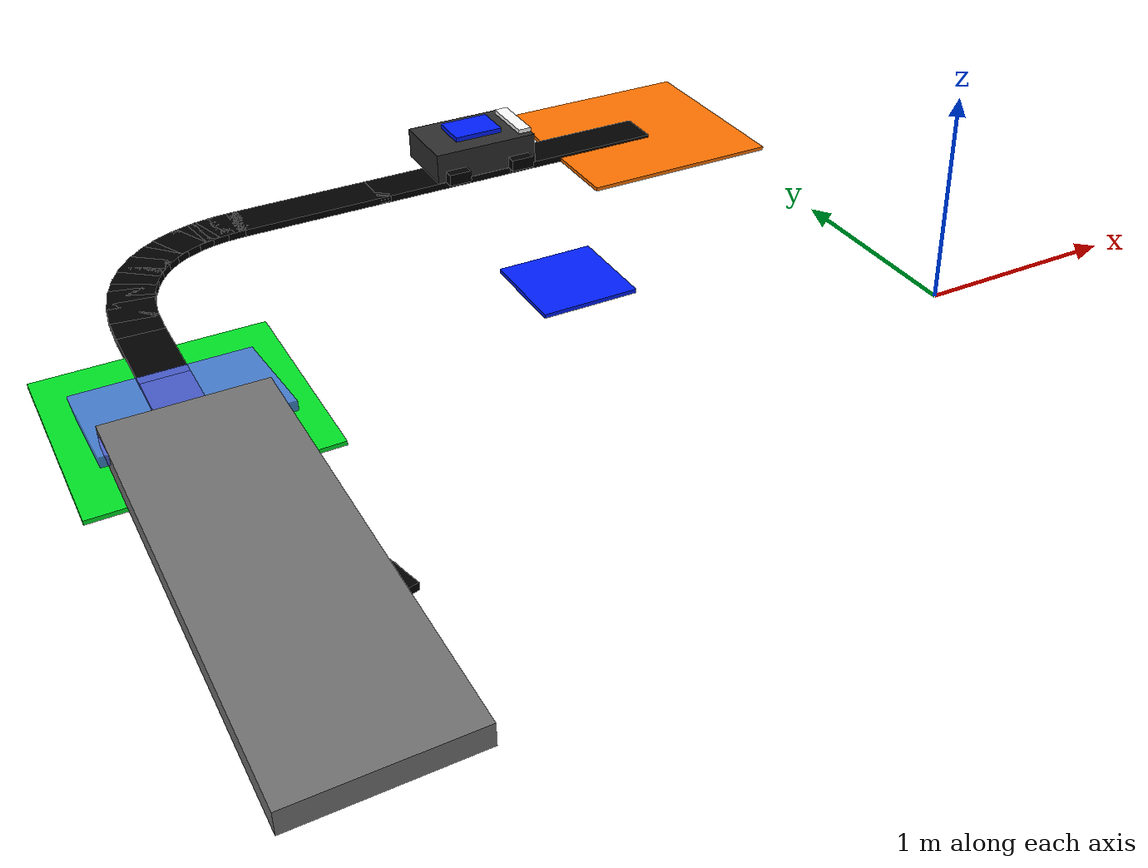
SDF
<sdf version="1.6">
 <world name="agv_factory_final_box_agv">
  <include><uri>model://sun</uri></include>
  <model name="main_loop_23">
   <static>true</static>
   <pose>-3.3500 -0.2000 0.0175 0 0 1.5708</pose>
   <link name="link">
    <collision name="collision"><geometry><box><size>0.5600 0.2200 0.0350</size></box></geometry></collision>
    <visual name="visual">
     <geometry><box><size>0.5600 0.2200 0.0350</size></box></geometry>
     <material><ambient>0 0 0 1</ambient><diffuse>0 0 0 1</diffuse></material>
    </visual>
   </link>
  </model>
  <model name="main_loop_24">
   <static>true</static>
   <pose>-3.3500 0.3000 0.0175 0 0 1.5708</pose>
   <link name="link">
    <collision name="collision"><geometry><box><size>0.5600 0.2200 0.0350</size></box></geometry></collision>
    <visual name="visual">
     <geometry><box><size>0.5600 0.2200 0.0350</size></box></geometry>
     <material><ambient>0 0 0 1</ambient><diffuse>0 0 0 1</diffuse></material>
    </visual>
   </link>
  </model>
  <model name="main_loop_25">
   <static>true</static>
   <pose>-3.3500 0.8000 0.0175 0 0 1.5708</pose>
   <link name="link">
    <collision name="collision"><geometry><box><size>0.5600 0.2200 0.0350</size></box></geometry></collision>
    <visual name="visual">
     <geometry><box><size>0.5600 0.2200 0.0350</size></box></geometry>
     <material><ambient>0 0 0 1</ambient><diffuse>0 0 0 1</diffuse></material>
    </visual>
   </link>
  </model>
  <model name="main_loop_26">
   <static>true</static>
   <pose>-3.3500 1.2500 0.0175 0 0 1.5708</pose>
   <link name="link">
    <collision name="collision"><geometry><box><size>0.4600 0.2200 0.0350</size></box></geometry></collision>
    <visual name="visual">
     <geometry><box><size>0.4600 0.2200 0.0350</size></box></geometry>
     <material><ambient>0 0 0 1</ambient><diffuse>0 0 0 1</diffuse></material>
    </visual>
   </link>
  </model>
  <model name="main_loop_27">
   <static>true</static>
   <pose>-3.3469 1.5156 0.0175 0 0 1.5241</pose>
   <link name="link">
    <collision name="collision"><geometry><box><size>0.1914 0.2200 0.0350</size></box></geometry></collision>
    <visual name="visual">
     <geometry><box><size>0.1914 0.2200 0.0350</size></box></geometry>
     <material><ambient>0 0 0 1</ambient><diffuse>0 0 0 1</diffuse></material>
    </visual>
   </link>
  </model>
  <model name="main_loop_28">
   <static>true</static>
   <pose>-3.3349 1.6408 0.0175 0 0 1.4211</pose>
   <link name="link">
    <collision name="collision"><geometry><box><size>0.1803 0.2200 0.0350</size></box></geometry></collision>
    <visual name="visual">
     <geometry><box><size>0.1803 0.2200 0.0350</size></box></geometry>
     <material><ambient>0 0 0 1</ambient><diffuse>0 0 0 1</diffuse></material>
    </visual>
   </link>
  </model>
  <model name="main_loop_29">
   <static>true</static>
   <pose>-3.3114 1.7536 0.0175 0 0 1.3052</pose>
   <link name="link">
    <collision name="collision"><geometry><box><size>0.1707 0.2200 0.0350</size></box></geometry></collision>
    <visual name="visual">
     <geometry><box><size>0.1707 0.2200 0.0350</size></box></geometry>
     <material><ambient>0 0 0 1</ambient><diffuse>0 0 0 1</diffuse></material>
    </visual>
   </link>
  </model>
  <model name="main_loop_30">
   <static>true</static>
   <pose>-3.2771 1.8544 0.0175 0 0 1.1764</pose>
   <link name="link">
    <collision name="collision"><geometry><box><size>0.1627 0.2200 0.0350</size></box></geometry></collision>
    <visual name="visual">
     <geometry><box><size>0.1627 0.2200 0.0350</size></box></geometry>
     <material><ambient>0 0 0 1</ambient><diffuse>0 0 0 1</diffuse></material>
    </visual>
   </link>
  </model>
  <model name="main_loop_31">
   <static>true</static>
   <pose>-3.2328 1.9434 0.0175 0 0 1.0359</pose>
   <link name="link">
    <collision name="collision"><geometry><box><size>0.1565 0.2200 0.0350</size></box></geometry></collision>
    <visual name="visual">
     <geometry><box><size>0.1565 0.2200 0.0350</size></box></geometry>
     <material><ambient>0 0 0 1</ambient><diffuse>0 0 0 1</diffuse></material>
    </visual>
   </link>
  </model>
  <model name="main_loop_32">
   <static>true</static>
   <pose>-3.1791 2.0206 0.0175 0 0 0.8866</pose>
   <link name="link">
    <collision name="collision"><geometry><box><size>0.1521 0.2200 0.0350</size></box></geometry></collision>
    <visual name="visual">
     <geometry><box><size>0.1521 0.2200 0.0350</size></box></geometry>
     <material><ambient>0 0 0 1</ambient><diffuse>0 0 0 1</diffuse></material>
    </visual>
   </link>
  </model>
  <model name="main_loop_33">
   <static>true</static>
   <pose>-3.1167 2.0862 0.0175 0 0 0.7331</pose>
   <link name="link">
    <collision name="collision"><geometry><box><size>0.1496 0.2200 0.0350</size></box></geometry></collision>
    <visual name="visual">
     <geometry><box><size>0.1496 0.2200 0.0350</size></box></geometry>
     <material><ambient>0 0 0 1</ambient><diffuse>0 0 0 1</diffuse></material>
    </visual>
   </link>
  </model>
  <model name="main_loop_34">
   <static>true</static>
   <pose>-3.0464 2.1405 0.0175 0 0 0.5803</pose>
   <link name="link">
    <collision name="collision"><geometry><box><size>0.1487 0.2200 0.0350</size></box></geometry></collision>
    <visual name="visual">
     <geometry><box><size>0.1487 0.2200 0.0350</size></box></geometry>
     <material><ambient>0 0 0 1</ambient><diffuse>0 0 0 1</diffuse></material>
    </visual>
   </link>
  </model>
  <model name="main_loop_35">
   <static>true</static>
   <pose>-2.9687 2.1836 0.0175 0 0 0.4332</pose>
   <link name="link">
    <collision name="collision"><geometry><box><size>0.1494 0.2200 0.0350</size></box></geometry></collision>
    <visual name="visual">
     <geometry><box><size>0.1494 0.2200 0.0350</size></box></geometry>
     <material><ambient>0 0 0 1</ambient><diffuse>0 0 0 1</diffuse></material>
    </visual>
   </link>
  </model>
  <model name="main_loop_36">
   <static>true</static>
   <pose>-2.8844 2.2156 0.0175 0 0 0.2954</pose>
   <link name="link">
    <collision name="collision"><geometry><box><size>0.1513 0.2200 0.0350</size></box></geometry></collision>
    <visual name="visual">
     <geometry><box><size>0.1513 0.2200 0.0350</size></box></geometry>
     <material><ambient>0 0 0 1</ambient><diffuse>0 0 0 1</diffuse></material>
    </visual>
   </link>
  </model>
  <model name="main_loop_37">
   <static>true</static>
   <pose>-2.7943 2.2368 0.0175 0 0 0.1687</pose>
   <link name="link">
    <collision name="collision"><geometry><box><size>0.1543 0.2200 0.0350</size></box></geometry></collision>
    <visual name="visual">
     <geometry><box><size>0.1543 0.2200 0.0350</size></box></geometry>
     <material><ambient>0 0 0 1</ambient><diffuse>0 0 0 1</diffuse></material>
    </visual>
   </link>
  </model>
  <model name="main_loop_38">
   <static>true</static>
   <pose>-2.6989 2.2474 0.0175 0 0 0.0535</pose>
   <link name="link">
    <collision name="collision"><geometry><box><size>0.1579 0.2200 0.0350</size></box></geometry></collision>
    <visual name="visual">
     <geometry><box><size>0.1579 0.2200 0.0350</size></box></geometry>
     <material><ambient>0 0 0 1</ambient><diffuse>0 0 0 1</diffuse></material>
    </visual>
   </link>
  </model>
  <model name="main_loop_39">
   <static>true</static>
   <pose>-2.2750 2.2500 0.0175 0 0 0.0000</pose>
   <link name="link">
    <collision name="collision"><geometry><box><size>0.8100 0.2200 0.0350</size></box></geometry></collision>
    <visual name="visual">
     <geometry><box><size>0.8100 0.2200 0.0350</size></box></geometry>
     <material><ambient>0 0 0 1</ambient><diffuse>0 0 0 1</diffuse></material>
    </visual>
   </link>
  </model>
  <model name="main_loop_40">
   <static>true</static>
   <pose>-1.5250 2.2500 0.0175 0 0 0.0000</pose>
   <link name="link">
    <collision name="collision"><geometry><box><size>0.8100 0.2200 0.0350</size></box></geometry></collision>
    <visual name="visual">
     <geometry><box><size>0.8100 0.2200 0.0350</size></box></geometry>
     <material><ambient>0 0 0 1</ambient><diffuse>0 0 0 1</diffuse></material>
    </visual>
   </link>
  </model>
  <model name="main_loop_41">
   <static>true</static>
   <pose>-0.7500 2.2500 0.0175 0 0 0.0000</pose>
   <link name="link">
    <collision name="collision"><geometry><box><size>0.8600 0.2200 0.0350</size></box></geometry></collision>
    <visual name="visual">
     <geometry><box><size>0.8600 0.2200 0.0350</size></box></geometry>
     <material><ambient>0 0 0 1</ambient><diffuse>0 0 0 1</diffuse></material>
    </visual>
   </link>
  </model>
  <model name="left_inner_curve_01">
   <static>true</static>
   <pose>-3.2984 -0.3247 0.0175 0 0 -0.4464</pose>
   <link name="link">
    <collision name="collision"><geometry><box><size>0.1743 0.2200 0.0350</size></box></geometry></collision>
    <visual name="visual">
     <geometry><box><size>0.1743 0.2200 0.0350</size></box></geometry>
     <material><ambient>0 0 0 1</ambient><diffuse>0 0 0 1</diffuse></material>
    </visual>
   </link>
  </model>
  <model name="left_inner_curve_02">
   <static>true</static>
   <pose>-3.2047 -0.3846 0.0175 0 0 -0.6964</pose>
   <link name="link">
    <collision name="collision"><geometry><box><size>0.1700 0.2200 0.0350</size></box></geometry></collision>
    <visual name="visual">
     <geometry><box><size>0.1700 0.2200 0.0350</size></box></geometry>
     <material><ambient>0 0 0 1</ambient><diffuse>0 0 0 1</diffuse></material>
    </visual>
   </link>
  </model>
  <model name="left_inner_curve_03">
   <static>true</static>
   <pose>-3.1297 -0.4639 0.0175 0 0 -0.9295</pose>
   <link name="link">
    <collision name="collision"><geometry><box><size>0.1697 0.2200 0.0350</size></box></geometry></collision>
    <visual name="visual">
     <geometry><box><size>0.1697 0.2200 0.0350</size></box></geometry>
     <material><ambient>0 0 0 1</ambient><diffuse>0 0 0 1</diffuse></material>
    </visual>
   </link>
  </model>
  <model name="left_inner_curve_04">
   <static>true</static>
   <pose>-3.0734 -0.5585 0.0175 0 0 -1.1380</pose>
   <link name="link">
    <collision name="collision"><geometry><box><size>0.1718 0.2200 0.0350</size></box></geometry></collision>
    <visual name="visual">
     <geometry><box><size>0.1718 0.2200 0.0350</size></box></geometry>
     <material><ambient>0 0 0 1</ambient><diffuse>0 0 0 1</diffuse></material>
    </visual>
   </link>
  </model>
  <model name="left_inner_curve_05">
   <static>true</static>
   <pose>-3.0359 -0.6648 0.0175 0 0 -1.3230</pose>
   <link name="link">
    <collision name="collision"><geometry><box><size>0.1747 0.2200 0.0350</size></box></geometry></collision>
    <visual name="visual">
     <geometry><box><size>0.1747 0.2200 0.0350</size></box></geometry>
     <material><ambient>0 0 0 1</ambient><diffuse>0 0 0 1</diffuse></material>
    </visual>
   </link>
  </model>
  <model name="orange_agv02_start_area">
   <static>true</static>
   <pose>-0.3500 2.2500 0.0100 0 0 0.0000</pose>
   <link name="link">
    <collision name="collision"><geometry><box><size>1.0500 1.0500 0.0200</size></box></geometry></collision>
    <visual name="visual">
     <geometry><box><size>1.0500 1.0500 0.0200</size></box></geometry>
     <material><ambient>1.0 0.45 0.0 1.0</ambient><diffuse>1.0 0.45 0.0 1.0</diffuse></material>
    </visual>
   </link>
  </model>
  <model name="green_left_square">
   <static>true</static>
   <pose>-3.3500 0.7500 0.0100 0 0 0.0000</pose>
   <link name="link">
    <collision name="collision"><geometry><box><size>1.0500 1.0500 0.0200</size></box></geometry></collision>
    <visual name="visual">
     <geometry><box><size>1.0500 1.0500 0.0200</size></box></geometry>
     <material><ambient>0.0 0.9 0.15 1.0</ambient><diffuse>0.0 0.9 0.15 1.0</diffuse></material>
    </visual>
   </link>
  </model>
  <model name="conveyor_area">
   <static>true</static>
   <pose>-3.3500 -0.4500 0.0850 0 0 0.0000</pose>
   <link name="link">
    <collision name="collision"><geometry><box><size>0.7200 2.2000 0.1000</size></box></geometry></collision>
    <visual name="visual">
     <geometry><box><size>0.7200 2.2000 0.1000</size></box></geometry>
     <material><ambient>0.45 0.45 0.45 1.0</ambient><diffuse>0.45 0.45 0.45 1.0</diffuse></material>
    </visual>
   </link>
  </model>
  <model name="ramp_area">
   <static>true</static>
   <pose>-3.3500 0.7500 0.0625 -0.1545 0.0000 0.0000</pose>
   <link name="link">
    <collision name="collision"><geometry><box><size>0.8000 0.6500 0.0450</size></box></geometry></collision>
    <visual name="visual">
     <geometry><box><size>0.8000 0.6500 0.0450</size></box></geometry>
     <material><ambient>0.38 0.48 1.0 0.85</ambient><diffuse>0.38 0.48 1.0 0.85</diffuse></material>
    </visual>
   </link>
  </model>
  <model name="finished_blue_box">
   <static>true</static>
   <pose>-1.4500 0.9500 0.0100 0 0 0.0000</pose>
   <link name="link">
    <collision name="collision"><geometry><box><size>0.4800 0.4800 0.0200</size></box></geometry></collision>
    <visual name="visual">
     <geometry><box><size>0.4800 0.4800 0.0200</size></box></geometry>
     <material><ambient>0.0 0.12 1.0 1.0</ambient><diffuse>0.0 0.12 1.0 1.0</diffuse></material>
    </visual>
   </link>
  </model>
  <model name="AGV02">
   <static>false</static>
   <pose>-1.3500 2.2500 0.1600 0 0 0.0000</pose>
   <link name="base_link">
    <collision name="body_collision"><geometry><box><size>0.5600 0.3800 0.1600</size></box></geometry></collision>
    <visual name="body_visual">
     <geometry><box><size>0.5600 0.3800 0.1600</size></box></geometry>
     <material><ambient>0.18 0.18 0.18 1.0</ambient><diffuse>0.18 0.18 0.18 1.0</diffuse></material>
    </visual>
    <visual name="front_direction_marker">
     <pose>0.2450 0 0.0900 0 0 0</pose>
     <geometry><box><size>0.0700 0.3000 0.0250</size></box></geometry>
     <material><ambient>1.0 1.0 1.0 1.0</ambient><diffuse>1.0 1.0 1.0 1.0</diffuse></material>
    </visual>
    <visual name="top_id_marker">
     <pose>0 0 0.1000 0 0 0</pose>
     <geometry><box><size>0.2600 0.2000 0.0250</size></box></geometry>
     <material><ambient>0.0 0.12 1.0 1.0</ambient><diffuse>0.0 0.12 1.0 1.0</diffuse></material>
    </visual>
    <visual name="left_front_wheel">
     <pose>0.1800 0.2250 -0.0450 0 0 0</pose>
     <geometry><box><size>0.1200 0.0550 0.0600</size></box></geometry>
     <material><ambient>0.0 0.0 0.0 1.0</ambient><diffuse>0.0 0.0 0.0 1.0</diffuse></material>
    </visual>
    <visual name="left_rear_wheel">
     <pose>-0.1800 0.2250 -0.0450 0 0 0</pose>
     <geometry><box><size>0.1200 0.0550 0.0600</size></box></geometry>
     <material><ambient>0.0 0.0 0.0 1.0</ambient><diffuse>0.0 0.0 0.0 1.0</diffuse></material>
    </visual>
    <visual name="right_front_wheel">
     <pose>0.1800 -0.2250 -0.0450 0 0 0</pose>
     <geometry><box><size>0.1200 0.0550 0.0600</size></box></geometry>
     <material><ambient>0.0 0.0 0.0 1.0</ambient><diffuse>0.0 0.0 0.0 1.0</diffuse></material>
    </visual>
    <visual name="right_rear_wheel">
     <pose>-0.1800 -0.2250 -0.0450 0 0 0</pose>
     <geometry><box><size>0.1200 0.0550 0.0600</size></box></geometry>
     <material><ambient>0.0 0.0 0.0 1.0</ambient><diffuse>0.0 0.0 0.0 1.0</diffuse></material>
    </visual>
   </link>
  </model>
 </world>
</sdf>
